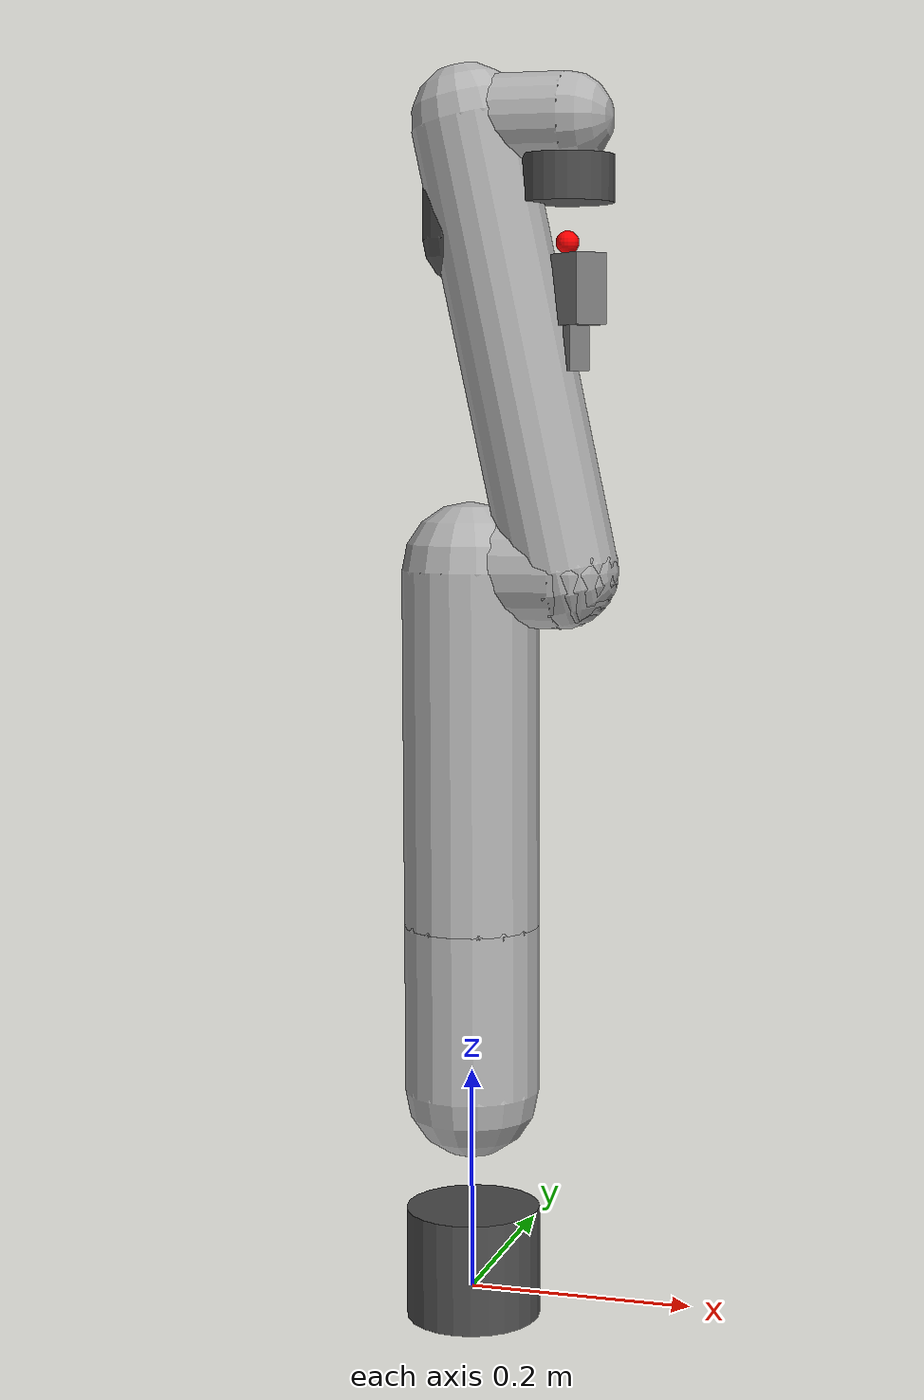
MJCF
<!--
  Franka Emika Panda 7-DOF robot arm with parallel-jaw gripper.
  Simplified MJCF model for SimVerse simulation.
  Based on publicly available Panda specifications.
-->
<mujoco model="panda">
  <compiler angle="radian" meshdir="." autolimits="true"/>

  <option timestep="0.002" gravity="0 0 -9.81" integrator="implicit"/>

  <default>
    <joint damping="1.0" armature="0.1"/>
    <geom condim="4" friction="1 0.5 0.01" solref="0.02 1"/>
    <position kp="100" kv="20"/>
    <default class="visual">
      <geom group="1" contype="0" conaffinity="0"/>
    </default>
    <default class="collision">
      <geom group="2"/>
    </default>
  </default>

  <asset>
    <material name="metal" rgba="0.7 0.7 0.7 1" specular="0.8" shininess="0.8"/>
    <material name="dark_metal" rgba="0.3 0.3 0.3 1" specular="0.6" shininess="0.6"/>
    <material name="gripper_mat" rgba="0.5 0.5 0.5 1"/>
  </asset>

  <worldbody>
    <body name="panda_link0" pos="0 0 0">
      <geom type="cylinder" size="0.06 0.05" pos="0 0 0.025" material="dark_metal" class="visual"/>
      <geom type="cylinder" size="0.06 0.05" pos="0 0 0.025" class="collision"/>

      <body name="panda_link1" pos="0 0 0.333">
        <joint name="joint1" type="hinge" axis="0 0 1" range="-2.8973 2.8973" damping="5.0"/>
        <geom type="capsule" fromto="0 0 0 0 0 -0.15" size="0.06" material="metal" class="visual"/>
        <geom type="capsule" fromto="0 0 0 0 0 -0.15" size="0.06" class="collision"/>

        <body name="panda_link2" pos="0 0 0" quat="0.707107 -0.707107 0 0">
          <joint name="joint2" type="hinge" axis="0 0 1" range="-1.7628 1.7628" damping="5.0"/>
          <geom type="capsule" fromto="0 0 0 0 -0.316 0" size="0.06" material="metal" class="visual"/>
          <geom type="capsule" fromto="0 0 0 0 -0.316 0" size="0.06" class="collision"/>

          <body name="panda_link3" pos="0 -0.316 0" quat="0.707107 0.707107 0 0">
            <joint name="joint3" type="hinge" axis="0 0 1" range="-2.8973 2.8973" damping="5.0"/>
            <geom type="capsule" fromto="0 0 0 0.0825 0 0" size="0.05" material="metal" class="visual"/>
            <geom type="capsule" fromto="0 0 0 0.0825 0 0" size="0.05" class="collision"/>

            <body name="panda_link4" pos="0.0825 0 0" quat="0.707107 0.707107 0 0">
              <joint name="joint4" type="hinge" axis="0 0 1" range="-3.0718 -0.0698" damping="5.0"/>
              <geom type="capsule" fromto="0 0 0 -0.0825 0.384 0" size="0.05" material="metal" class="visual"/>
              <geom type="capsule" fromto="0 0 0 -0.0825 0.384 0" size="0.05" class="collision"/>

              <body name="panda_link5" pos="-0.0825 0.384 0" quat="0.707107 -0.707107 0 0">
                <joint name="joint5" type="hinge" axis="0 0 1" range="-2.8973 2.8973" damping="3.0"/>
                <geom type="capsule" fromto="0 0 0 0 0 -0.1" size="0.04" material="dark_metal" class="visual"/>
                <geom type="capsule" fromto="0 0 0 0 0 -0.1" size="0.04" class="collision"/>

                <body name="panda_link6" pos="0 0 0" quat="0.707107 0.707107 0 0">
                  <joint name="joint6" type="hinge" axis="0 0 1" range="-0.0175 3.7525" damping="3.0"/>
                  <geom type="capsule" fromto="0 0 0 0.088 0 0" size="0.04" material="metal" class="visual"/>
                  <geom type="capsule" fromto="0 0 0 0.088 0 0" size="0.04" class="collision"/>

                  <body name="panda_link7" pos="0.088 0 0" quat="0.707107 0.707107 0 0">
                    <joint name="joint7" type="hinge" axis="0 0 1" range="-2.8973 2.8973" damping="1.0"/>
                    <geom type="cylinder" size="0.04 0.02" pos="0 0 0.05" material="dark_metal" class="visual"/>
                    <geom type="cylinder" size="0.04 0.02" pos="0 0 0.05" class="collision"/>

                    <site name="end_effector" pos="0 0 0.1034" size="0.01" rgba="1 0 0 1"/>

                    <!-- Gripper -->
                    <body name="panda_hand" pos="0 0 0.1034" quat="0.924 0 0 -0.383">
                      <geom type="box" size="0.015 0.04 0.03" pos="0 0 0.04" material="gripper_mat" class="visual"/>
                      <geom type="box" size="0.015 0.04 0.03" pos="0 0 0.04" class="collision"/>

                      <body name="panda_leftfinger" pos="0 0 0.0584">
                        <joint name="finger_joint1" type="slide" axis="0 1 0" range="0 0.04" damping="10"/>
                        <geom type="box" size="0.01 0.005 0.03" pos="0 0.015 0.02" material="gripper_mat" class="visual"/>
                        <geom type="box" size="0.01 0.005 0.03" pos="0 0.015 0.02" class="collision"/>
                      </body>

                      <body name="panda_rightfinger" pos="0 0 0.0584">
                        <joint name="finger_joint2" type="slide" axis="0 -1 0" range="0 0.04" damping="10"/>
                        <geom type="box" size="0.01 0.005 0.03" pos="0 -0.015 0.02" material="gripper_mat" class="visual"/>
                        <geom type="box" size="0.01 0.005 0.03" pos="0 -0.015 0.02" class="collision"/>
                      </body>
                    </body>
                  </body>
                </body>
              </body>
            </body>
          </body>
        </body>
      </body>
    </body>
  </worldbody>

  <actuator>
    <position name="actuator1" joint="joint1" kp="4500"/>
    <position name="actuator2" joint="joint2" kp="4500"/>
    <position name="actuator3" joint="joint3" kp="3500"/>
    <position name="actuator4" joint="joint4" kp="3500"/>
    <position name="actuator5" joint="joint5" kp="2000"/>
    <position name="actuator6" joint="joint6" kp="2000"/>
    <position name="actuator7" joint="joint7" kp="2000"/>
    <position name="actuator_finger1" joint="finger_joint1" kp="1000"/>
    <position name="actuator_finger2" joint="finger_joint2" kp="1000"/>
  </actuator>

  <sensor>
    <jointpos name="joint1_pos" joint="joint1"/>
    <jointpos name="joint2_pos" joint="joint2"/>
    <jointpos name="joint3_pos" joint="joint3"/>
    <jointpos name="joint4_pos" joint="joint4"/>
    <jointpos name="joint5_pos" joint="joint5"/>
    <jointpos name="joint6_pos" joint="joint6"/>
    <jointpos name="joint7_pos" joint="joint7"/>
    <jointvel name="joint1_vel" joint="joint1"/>
    <jointvel name="joint2_vel" joint="joint2"/>
    <jointvel name="joint3_vel" joint="joint3"/>
    <jointvel name="joint4_vel" joint="joint4"/>
    <jointvel name="joint5_vel" joint="joint5"/>
    <jointvel name="joint6_vel" joint="joint6"/>
    <jointvel name="joint7_vel" joint="joint7"/>
  </sensor>
</mujoco>
